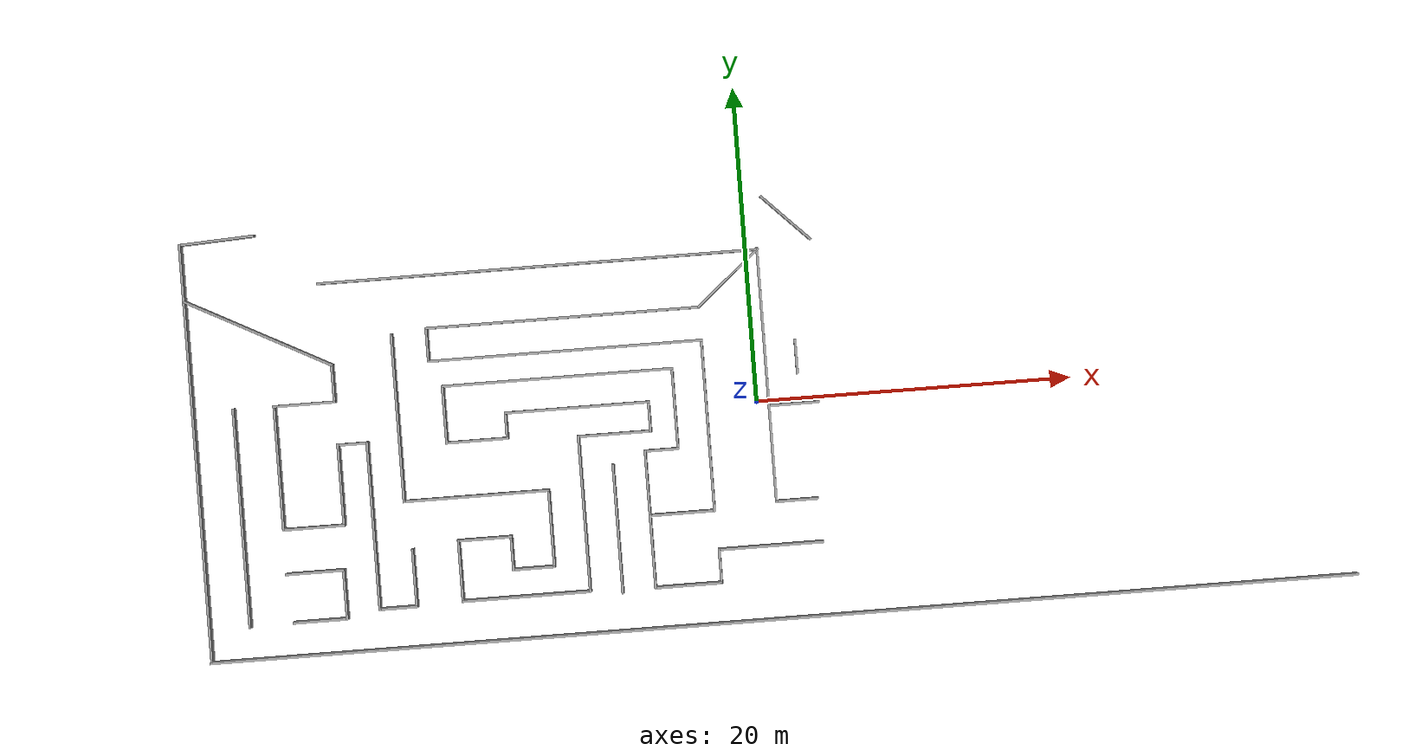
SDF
<sdf version="1.6">
 <model name="maze">
  <pose>0.673756 -0.372053 0 0 -0 0</pose>
  <link name="Wall_116">
   <collision name="Wall_116_Collision">
    <geometry><box><size>4.8415 0.15 2.5</size></box></geometry>
    <pose>0 0 1.25 0 -0 0</pose>
   </collision>
   <visual name="Wall_116_Visual">
    <pose>0 0 1.25 0 -0 0</pose>
    <geometry><box><size>4.8415 0.15 2.5</size></box></geometry>
    <material>
     <script><uri>file://media/materials/scripts/gazebo.material</uri><name>Gazebo/Grey</name></script>
     <ambient>1 1 1 1</ambient>
    </material>
   </visual>
   <pose>-34.0821 13.2535 0 0 -0 0.049384</pose>
  </link>
  <link name="Wall_12">
   <collision name="Wall_12_Collision">
    <geometry><box><size>28 0.15 2.5</size></box></geometry>
    <pose>0 0 1.25 0 -0 0</pose>
   </collision>
   <visual name="Wall_12_Visual">
    <pose>0 0 1.25 0 -0 0</pose>
    <geometry><box><size>28 0.15 2.5</size></box></geometry>
    <material>
     <script><uri>file://media/materials/scripts/gazebo.material</uri><name>Gazebo/Grey</name></script>
     <ambient>1 1 1 1</ambient>
    </material>
   </visual>
   <pose>-13.9482 10.0273 0 0 -0 0</pose>
  </link>
  <link name="Wall_128">
   <collision name="Wall_128_Collision">
    <geometry><box><size>2.25 0.15 2.5</size></box></geometry>
    <pose>0 0 1.25 0 -0 0</pose>
   </collision>
   <visual name="Wall_128_Visual">
    <pose>0 0 1.25 0 -0 0</pose>
    <geometry><box><size>2.25 0.15 2.5</size></box></geometry>
    <material>
     <script><uri>file://media/materials/scripts/gazebo.material</uri><name>Gazebo/Grey</name></script>
     <ambient>1 1 1 1</ambient>
    </material>
   </visual>
   <pose>2.03947 3.07382 0 0 0 -1.5708</pose>
  </link>
  <link name="Wall_13">
   <collision name="Wall_13_Collision">
    <geometry><box><size>5.35713 0.15 2.5</size></box></geometry>
    <pose>0 0 1.25 0 -0 0</pose>
   </collision>
   <visual name="Wall_13_Visual">
    <pose>0 0 1.25 0 -0 0</pose>
    <geometry><box><size>5.35713 0.15 2.5</size></box></geometry>
    <material>
     <script><uri>file://media/materials/scripts/gazebo.material</uri><name>Gazebo/Grey</name></script>
     <ambient>1 1 1 1</ambient>
    </material>
   </visual>
   <pose>-1.89938 8.3483 0 0 0 -2.44071</pose>
  </link>
  <link name="Wall_14">
   <collision name="Wall_14_Collision">
    <geometry><box><size>17.5 0.15 2.5</size></box></geometry>
    <pose>0 0 1.25 0 -0 0</pose>
   </collision>
   <visual name="Wall_14_Visual">
    <pose>0 0 1.25 0 -0 0</pose>
    <geometry><box><size>17.5 0.15 2.5</size></box></geometry>
    <material>
     <script><uri>file://media/materials/scripts/gazebo.material</uri><name>Gazebo/Grey</name></script>
     <ambient>1 1 1 1</ambient>
    </material>
   </visual>
   <pose>-12.5642 6.66928 0 0 -0 3.14159</pose>
  </link>
  <link name="Wall_146">
   <collision name="Wall_146_Collision">
    <geometry><box><size>4.75 0.15 2.5</size></box></geometry>
    <pose>0 0 1.25 0 -0 0</pose>
   </collision>
   <visual name="Wall_146_Visual">
    <pose>0 0 1.25 0 -0 0</pose>
    <geometry><box><size>4.75 0.15 2.5</size></box></geometry>
    <material>
     <script><uri>file://media/materials/scripts/gazebo.material</uri><name>Gazebo/Grey</name></script>
     <ambient>1 1 1 1</ambient>
    </material>
   </visual>
   <pose>-7.98922 -8.58072 0 0 0 -1.5708</pose>
  </link>
  <link name="Wall_147">
   <collision name="Wall_147_Collision">
    <geometry><box><size>2 0.15 2.5</size></box></geometry>
    <pose>0 0 1.25 0 -0 0</pose>
   </collision>
   <visual name="Wall_147_Visual">
    <pose>0 0 1.25 0 -0 0</pose>
    <geometry><box><size>2 0.15 2.5</size></box></geometry>
    <material>
     <script><uri>file://media/materials/scripts/gazebo.material</uri><name>Gazebo/Grey</name></script>
     <ambient>1 1 1 1</ambient>
    </material>
   </visual>
   <pose>-7.06422 -10.8807 0 0 -0 0</pose>
  </link>
  <link name="Wall_148">
   <collision name="Wall_148_Collision">
    <geometry><box><size>2.5 0.15 2.5</size></box></geometry>
    <pose>0 0 1.25 0 -0 0</pose>
   </collision>
   <visual name="Wall_148_Visual">
    <pose>0 0 1.25 0 -0 0</pose>
    <geometry><box><size>2.5 0.15 2.5</size></box></geometry>
    <material>
     <script><uri>file://media/materials/scripts/gazebo.material</uri><name>Gazebo/Grey</name></script>
     <ambient>1 1 1 1</ambient>
    </material>
   </visual>
   <pose>-4.96422 -10.8807 0 0 -0 0</pose>
  </link>
  <link name="Wall_149">
   <collision name="Wall_149_Collision">
    <geometry><box><size>2.25 0.15 2.5</size></box></geometry>
    <pose>0 0 1.25 0 -0 0</pose>
   </collision>
   <visual name="Wall_149_Visual">
    <pose>0 0 1.25 0 -0 0</pose>
    <geometry><box><size>2.25 0.15 2.5</size></box></geometry>
    <material>
     <script><uri>file://media/materials/scripts/gazebo.material</uri><name>Gazebo/Grey</name></script>
     <ambient>1 1 1 1</ambient>
    </material>
   </visual>
   <pose>-3.78922 -9.83072 0 0 -0 1.5708</pose>
  </link>
  <link name="Wall_15">
   <collision name="Wall_15_Collision">
    <geometry><box><size>2.25 0.15 2.5</size></box></geometry>
    <pose>0 0 1.25 0 -0 0</pose>
   </collision>
   <visual name="Wall_15_Visual">
    <pose>0 0 1.25 0 -0 0</pose>
    <geometry><box><size>2.25 0.15 2.5</size></box></geometry>
    <material>
     <script><uri>file://media/materials/scripts/gazebo.material</uri><name>Gazebo/Grey</name></script>
     <ambient>1 1 1 1</ambient>
    </material>
   </visual>
   <pose>-21.2392 5.61928 0 0 0 -1.5708</pose>
  </link>
  <link name="Wall_150">
   <collision name="Wall_150_Collision">
    <geometry><box><size>6.75 0.15 2.5</size></box></geometry>
    <pose>0 0 1.25 0 -0 0</pose>
   </collision>
   <visual name="Wall_150_Visual">
    <pose>0 0 1.25 0 -0 0</pose>
    <geometry><box><size>6.75 0.15 2.5</size></box></geometry>
    <material>
     <script><uri>file://media/materials/scripts/gazebo.material</uri><name>Gazebo/Grey</name></script>
     <ambient>1 1 1 1</ambient>
    </material>
   </visual>
   <pose>-0.489216 -8.78072 0 0 -0 0</pose>
  </link>
  <link name="Wall_153">
   <collision name="Wall_153_Collision">
    <geometry><box><size>8.25 0.15 2.5</size></box></geometry>
    <pose>0 0 1.25 0 -0 0</pose>
   </collision>
   <visual name="Wall_153_Visual">
    <pose>0 0 1.25 0 -0 0</pose>
    <geometry><box><size>8.25 0.15 2.5</size></box></geometry>
    <material>
     <script><uri>file://media/materials/scripts/gazebo.material</uri><name>Gazebo/Grey</name></script>
     <ambient>1 1 1 1</ambient>
    </material>
   </visual>
   <pose>-10.0893 -6.96963 0 0 0 -1.5708</pose>
  </link>
  <link name="Wall_156">
   <collision name="Wall_156_Collision">
    <geometry><box><size>10.75 0.15 2.5</size></box></geometry>
    <pose>0 0 1.25 0 -0 0</pose>
   </collision>
   <visual name="Wall_156_Visual">
    <pose>0 0 1.25 0 -0 0</pose>
    <geometry><box><size>10.75 0.15 2.5</size></box></geometry>
    <material>
     <script><uri>file://media/materials/scripts/gazebo.material</uri><name>Gazebo/Grey</name></script>
     <ambient>1 1 1 1</ambient>
    </material>
   </visual>
   <pose>-23.4764 1.11928 0 0 -0 1.5708</pose>
  </link>
  <link name="Wall_16">
   <collision name="Wall_16_Collision">
    <geometry><box><size>17.5 0.15 2.5</size></box></geometry>
    <pose>0 0 1.25 0 -0 0</pose>
   </collision>
   <visual name="Wall_16_Visual">
    <pose>0 0 1.25 0 -0 0</pose>
    <geometry><box><size>17.5 0.15 2.5</size></box></geometry>
    <material>
     <script><uri>file://media/materials/scripts/gazebo.material</uri><name>Gazebo/Grey</name></script>
     <ambient>1 1 1 1</ambient>
    </material>
   </visual>
   <pose>-12.5642 4.56928 0 0 -0 0</pose>
  </link>
  <link name="Wall_165">
   <collision name="Wall_165_Collision">
    <geometry><box><size>3.25 0.15 2.5</size></box></geometry>
    <pose>0 0 1.25 0 -0 0</pose>
   </collision>
   <visual name="Wall_165_Visual">
    <pose>0 0 1.25 0 -0 0</pose>
    <geometry><box><size>3.25 0.15 2.5</size></box></geometry>
    <material>
     <script><uri>file://media/materials/scripts/gazebo.material</uri><name>Gazebo/Grey</name></script>
     <ambient>1 1 1 1</ambient>
    </material>
   </visual>
   <pose>1.67671 0.087351 0 0 -0 0</pose>
  </link>
  <link name="Wall_17">
   <collision name="Wall_17_Collision">
    <geometry><box><size>11 0.15 2.5</size></box></geometry>
    <pose>0 0 1.25 0 -0 0</pose>
   </collision>
   <visual name="Wall_17_Visual">
    <pose>0 0 1.25 0 -0 0</pose>
    <geometry><box><size>11 0.15 2.5</size></box></geometry>
    <material>
     <script><uri>file://media/materials/scripts/gazebo.material</uri><name>Gazebo/Grey</name></script>
     <ambient>1 1 1 1</ambient>
    </material>
   </visual>
   <pose>-3.88922 -0.855718 0 0 0 -1.5708</pose>
  </link>
  <link name="Wall_18">
   <collision name="Wall_18_Collision">
    <geometry><box><size>4.25 0.15 2.5</size></box></geometry>
    <pose>0 0 1.25 0 -0 0</pose>
   </collision>
   <visual name="Wall_18_Visual">
    <pose>0 0 1.25 0 -0 0</pose>
    <geometry><box><size>4.25 0.15 2.5</size></box></geometry>
    <material>
     <script><uri>file://media/materials/scripts/gazebo.material</uri><name>Gazebo/Grey</name></script>
     <ambient>1 1 1 1</ambient>
    </material>
   </visual>
   <pose>-5.93922 -6.28072 0 0 -0 3.14159</pose>
  </link>
  <link name="Wall_19">
   <collision name="Wall_19_Collision">
    <geometry><box><size>4.25 0.15 2.5</size></box></geometry>
    <pose>0 0 1.25 0 -0 0</pose>
   </collision>
   <visual name="Wall_19_Visual">
    <pose>0 0 1.25 0 -0 0</pose>
    <geometry><box><size>4.25 0.15 2.5</size></box></geometry>
    <material>
     <script><uri>file://media/materials/scripts/gazebo.material</uri><name>Gazebo/Grey</name></script>
     <ambient>1 1 1 1</ambient>
    </material>
   </visual>
   <pose>-7.98922 -4.23072 0 0 -0 1.5708</pose>
  </link>
  <link name="Wall_195">
   <collision name="Wall_195_Collision">
    <geometry><box><size>4.25 0.15 2.5</size></box></geometry>
    <pose>0 0 1.25 0 -0 0</pose>
   </collision>
   <visual name="Wall_195_Visual">
    <pose>0 0 1.25 0 -0 0</pose>
    <geometry><box><size>4.25 0.15 2.5</size></box></geometry>
    <material>
     <script><uri>file://media/materials/scripts/gazebo.material</uri><name>Gazebo/Grey</name></script>
     <ambient>1 1 1 1</ambient>
    </material>
   </visual>
   <pose>2.05254 11.8855 0 0 -0 2.35619</pose>
  </link>
  <link name="Wall_20">
   <collision name="Wall_20_Collision">
    <geometry><box><size>2.25 0.15 2.5</size></box></geometry>
    <pose>0 0 1.25 0 -0 0</pose>
   </collision>
   <visual name="Wall_20_Visual">
    <pose>0 0 1.25 0 -0 0</pose>
    <geometry><box><size>2.25 0.15 2.5</size></box></geometry>
    <material>
     <script><uri>file://media/materials/scripts/gazebo.material</uri><name>Gazebo/Grey</name></script>
     <ambient>1 1 1 1</ambient>
    </material>
   </visual>
   <pose>-6.93922 -2.18072 0 0 -0 0</pose>
  </link>
  <link name="Wall_21">
   <collision name="Wall_21_Collision">
    <geometry><box><size>5.25 0.15 2.5</size></box></geometry>
    <pose>0 0 1.25 0 -0 0</pose>
   </collision>
   <visual name="Wall_21_Visual">
    <pose>0 0 1.25 0 -0 0</pose>
    <geometry><box><size>5.25 0.15 2.5</size></box></geometry>
    <material>
     <script><uri>file://media/materials/scripts/gazebo.material</uri><name>Gazebo/Grey</name></script>
     <ambient>1 1 1 1</ambient>
    </material>
   </visual>
   <pose>-5.88922 0.369282 0 0 -0 1.5708</pose>
  </link>
  <link name="Wall_22">
   <collision name="Wall_22_Collision">
    <geometry><box><size>14.75 0.15 2.5</size></box></geometry>
    <pose>0 0 1.25 0 -0 0</pose>
   </collision>
   <visual name="Wall_22_Visual">
    <pose>0 0 1.25 0 -0 0</pose>
    <geometry><box><size>14.75 0.15 2.5</size></box></geometry>
    <material>
     <script><uri>file://media/materials/scripts/gazebo.material</uri><name>Gazebo/Grey</name></script>
     <ambient>1 1 1 1</ambient>
    </material>
   </visual>
   <pose>-13.1892 2.91928 0 0 -0 3.14159</pose>
  </link>
  <link name="Wall_23">
   <collision name="Wall_23_Collision">
    <geometry><box><size>3.75 0.15 2.5</size></box></geometry>
    <pose>0 0 1.25 0 -0 0</pose>
   </collision>
   <visual name="Wall_23_Visual">
    <pose>0 0 1.25 0 -0 0</pose>
    <geometry><box><size>3.75 0.15 2.5</size></box></geometry>
    <material>
     <script><uri>file://media/materials/scripts/gazebo.material</uri><name>Gazebo/Grey</name></script>
     <ambient>1 1 1 1</ambient>
    </material>
   </visual>
   <pose>-20.4892 1.11928 0 0 0 -1.5708</pose>
  </link>
  <link name="Wall_24">
   <collision name="Wall_24_Collision">
    <geometry><box><size>4 0.15 2.5</size></box></geometry>
    <pose>0 0 1.25 0 -0 0</pose>
   </collision>
   <visual name="Wall_24_Visual">
    <pose>0 0 1.25 0 -0 0</pose>
    <geometry><box><size>4 0.15 2.5</size></box></geometry>
    <material>
     <script><uri>file://media/materials/scripts/gazebo.material</uri><name>Gazebo/Grey</name></script>
     <ambient>1 1 1 1</ambient>
    </material>
   </visual>
   <pose>-18.5642 -0.680718 0 0 -0 0</pose>
  </link>
  <link name="Wall_25">
   <collision name="Wall_25_Collision">
    <geometry><box><size>1.75 0.15 2.5</size></box></geometry>
    <pose>0 0 1.25 0 -0 0</pose>
   </collision>
   <visual name="Wall_25_Visual">
    <pose>0 0 1.25 0 -0 0</pose>
    <geometry><box><size>1.75 0.15 2.5</size></box></geometry>
    <material>
     <script><uri>file://media/materials/scripts/gazebo.material</uri><name>Gazebo/Grey</name></script>
     <ambient>1 1 1 1</ambient>
    </material>
   </visual>
   <pose>-16.6392 0.119282 0 0 -0 1.5708</pose>
  </link>
  <link name="Wall_26">
   <collision name="Wall_26_Collision">
    <geometry><box><size>9.25 0.15 2.5</size></box></geometry>
    <pose>0 0 1.25 0 -0 0</pose>
   </collision>
   <visual name="Wall_26_Visual">
    <pose>0 0 1.25 0 -0 0</pose>
    <geometry><box><size>9.25 0.15 2.5</size></box></geometry>
    <material>
     <script><uri>file://media/materials/scripts/gazebo.material</uri><name>Gazebo/Grey</name></script>
     <ambient>1 1 1 1</ambient>
    </material>
   </visual>
   <pose>-12.0892 0.919282 0 0 -0 0</pose>
  </link>
  <link name="Wall_27">
   <collision name="Wall_27_Collision">
    <geometry><box><size>2 0.15 2.5</size></box></geometry>
    <pose>0 0 1.25 0 -0 0</pose>
   </collision>
   <visual name="Wall_27_Visual">
    <pose>0 0 1.25 0 -0 0</pose>
    <geometry><box><size>2 0.15 2.5</size></box></geometry>
    <material>
     <script><uri>file://media/materials/scripts/gazebo.material</uri><name>Gazebo/Grey</name></script>
     <ambient>1 1 1 1</ambient>
    </material>
   </visual>
   <pose>-7.53922 -0.005718 0 0 0 -1.5708</pose>
  </link>
  <link name="Wall_28">
   <collision name="Wall_28_Collision">
    <geometry><box><size>4.75 0.15 2.5</size></box></geometry>
    <pose>0 0 1.25 0 -0 0</pose>
   </collision>
   <visual name="Wall_28_Visual">
    <pose>0 0 1.25 0 -0 0</pose>
    <geometry><box><size>4.75 0.15 2.5</size></box></geometry>
    <material>
     <script><uri>file://media/materials/scripts/gazebo.material</uri><name>Gazebo/Grey</name></script>
     <ambient>1 1 1 1</ambient>
    </material>
   </visual>
   <pose>-9.83922 -0.930718 0 0 -0 3.14159</pose>
  </link>
  <link name="Wall_29">
   <collision name="Wall_29_Collision">
    <geometry><box><size>10 0.15 2.5</size></box></geometry>
    <pose>0 0 1.25 0 -0 0</pose>
   </collision>
   <visual name="Wall_29_Visual">
    <pose>0 0 1.25 0 -0 0</pose>
    <geometry><box><size>10 0.15 2.5</size></box></geometry>
    <material>
     <script><uri>file://media/materials/scripts/gazebo.material</uri><name>Gazebo/Grey</name></script>
     <ambient>1 1 1 1</ambient>
    </material>
   </visual>
   <pose>-12.1392 -5.85572 0 0 0 -1.5708</pose>
  </link>
  <link name="Wall_30">
   <collision name="Wall_30_Collision">
    <geometry><box><size>8.25 0.15 2.5</size></box></geometry>
    <pose>0 0 1.25 0 -0 0</pose>
   </collision>
   <visual name="Wall_30_Visual">
    <pose>0 0 1.25 0 -0 0</pose>
    <geometry><box><size>8.25 0.15 2.5</size></box></geometry>
    <material>
     <script><uri>file://media/materials/scripts/gazebo.material</uri><name>Gazebo/Grey</name></script>
     <ambient>1 1 1 1</ambient>
    </material>
   </visual>
   <pose>-16.1892 -10.7807 0 0 -0 3.14159</pose>
  </link>
  <link name="Wall_31">
   <collision name="Wall_31_Collision">
    <geometry><box><size>4 0.15 2.5</size></box></geometry>
    <pose>0 0 1.25 0 -0 0</pose>
   </collision>
   <visual name="Wall_31_Visual">
    <pose>0 0 1.25 0 -0 0</pose>
    <geometry><box><size>4 0.15 2.5</size></box></geometry>
    <material>
     <script><uri>file://media/materials/scripts/gazebo.material</uri><name>Gazebo/Grey</name></script>
     <ambient>1 1 1 1</ambient>
    </material>
   </visual>
   <pose>-20.2392 -8.85572 0 0 -0 1.5708</pose>
  </link>
  <link name="Wall_32">
   <collision name="Wall_32_Collision">
    <geometry><box><size>3.5 0.15 2.5</size></box></geometry>
    <pose>0 0 1.25 0 -0 0</pose>
   </collision>
   <visual name="Wall_32_Visual">
    <pose>0 0 1.25 0 -0 0</pose>
    <geometry><box><size>3.5 0.15 2.5</size></box></geometry>
    <material>
     <script><uri>file://media/materials/scripts/gazebo.material</uri><name>Gazebo/Grey</name></script>
     <ambient>1 1 1 1</ambient>
    </material>
   </visual>
   <pose>-18.5642 -6.93072 0 0 -0 0</pose>
  </link>
  <link name="Wall_33">
   <collision name="Wall_33_Collision">
    <geometry><box><size>2.25 0.15 2.5</size></box></geometry>
    <pose>0 0 1.25 0 -0 0</pose>
   </collision>
   <visual name="Wall_33_Visual">
    <pose>0 0 1.25 0 -0 0</pose>
    <geometry><box><size>2.25 0.15 2.5</size></box></geometry>
    <material>
     <script><uri>file://media/materials/scripts/gazebo.material</uri><name>Gazebo/Grey</name></script>
     <ambient>1 1 1 1</ambient>
    </material>
   </visual>
   <pose>-16.8892 -7.98072 0 0 0 -1.5708</pose>
  </link>
  <link name="Wall_34">
   <collision name="Wall_34_Collision">
    <geometry><box><size>2.75 0.15 2.5</size></box></geometry>
    <pose>0 0 1.25 0 -0 0</pose>
   </collision>
   <visual name="Wall_34_Visual">
    <pose>0 0 1.25 0 -0 0</pose>
    <geometry><box><size>2.75 0.15 2.5</size></box></geometry>
    <material>
     <script><uri>file://media/materials/scripts/gazebo.material</uri><name>Gazebo/Grey</name></script>
     <ambient>1 1 1 1</ambient>
    </material>
   </visual>
   <pose>-15.5892 -9.03072 0 0 -0 0</pose>
  </link>
  <link name="Wall_35">
   <collision name="Wall_35_Collision">
    <geometry><box><size>5 0.15 2.5</size></box></geometry>
    <pose>0 0 1.25 0 -0 0</pose>
   </collision>
   <visual name="Wall_35_Visual">
    <pose>0 0 1.25 0 -0 0</pose>
    <geometry><box><size>5 0.15 2.5</size></box></geometry>
    <material>
     <script><uri>file://media/materials/scripts/gazebo.material</uri><name>Gazebo/Grey</name></script>
     <ambient>1 1 1 1</ambient>
    </material>
   </visual>
   <pose>-14.2892 -6.60572 0 0 -0 1.5708</pose>
  </link>
  <link name="Wall_36">
   <collision name="Wall_36_Collision">
    <geometry><box><size>9.33717 0.15 2.5</size></box></geometry>
    <pose>0 0 1.25 0 -0 0</pose>
   </collision>
   <visual name="Wall_36_Visual">
    <pose>0 0 1.25 0 -0 0</pose>
    <geometry><box><size>9.33717 0.15 2.5</size></box></geometry>
    <material>
     <script><uri>file://media/materials/scripts/gazebo.material</uri><name>Gazebo/Grey</name></script>
     <ambient>1 1 1 1</ambient>
    </material>
   </visual>
   <pose>-18.8828 -4.18072 0 0 -0 3.14159</pose>
  </link>
  <link name="Wall_40">
   <collision name="Wall_40_Collision">
    <geometry><box><size>10.2783 0.15 2.5</size></box></geometry>
    <pose>0 0 1.25 0 -0 0</pose>
   </collision>
   <visual name="Wall_40_Visual">
    <pose>0 0 1.25 0 -0 0</pose>
    <geometry><box><size>10.2783 0.15 2.5</size></box></geometry>
    <material>
     <script><uri>file://media/materials/scripts/gazebo.material</uri><name>Gazebo/Grey</name></script>
     <ambient>1 1 1 1</ambient>
    </material>
   </visual>
   <pose>-31.8772 7.16528 0 0 0 -0.481664</pose>
  </link>
  <link name="Wall_41">
   <collision name="Wall_41_Collision">
    <geometry><box><size>2.5 0.15 2.5</size></box></geometry>
    <pose>0 0 1.25 0 -0 0</pose>
   </collision>
   <visual name="Wall_41_Visual">
    <pose>0 0 1.25 0 -0 0</pose>
    <geometry><box><size>2.5 0.15 2.5</size></box></geometry>
    <material>
     <script><uri>file://media/materials/scripts/gazebo.material</uri><name>Gazebo/Grey</name></script>
     <ambient>1 1 1 1</ambient>
    </material>
   </visual>
   <pose>-27.3892 3.64428 0 0 0 -1.5708</pose>
  </link>
  <link name="Wall_42">
   <collision name="Wall_42_Collision">
    <geometry><box><size>4 0.15 2.5</size></box></geometry>
    <pose>0 0 1.25 0 -0 0</pose>
   </collision>
   <visual name="Wall_42_Visual">
    <pose>0 0 1.25 0 -0 0</pose>
    <geometry><box><size>4 0.15 2.5</size></box></geometry>
    <material>
     <script><uri>file://media/materials/scripts/gazebo.material</uri><name>Gazebo/Grey</name></script>
     <ambient>1 1 1 1</ambient>
    </material>
   </visual>
   <pose>-29.3142 2.46928 0 0 -0 3.14159</pose>
  </link>
  <link name="Wall_43">
   <collision name="Wall_43_Collision">
    <geometry><box><size>8 0.15 2.5</size></box></geometry>
    <pose>0 0 1.25 0 -0 0</pose>
   </collision>
   <visual name="Wall_43_Visual">
    <pose>0 0 1.25 0 -0 0</pose>
    <geometry><box><size>8 0.15 2.5</size></box></geometry>
    <material>
     <script><uri>file://media/materials/scripts/gazebo.material</uri><name>Gazebo/Grey</name></script>
     <ambient>1 1 1 1</ambient>
    </material>
   </visual>
   <pose>-31.2392 -1.45572 0 0 0 -1.5708</pose>
  </link>
  <link name="Wall_44">
   <collision name="Wall_44_Collision">
    <geometry><box><size>4 0.15 2.5</size></box></geometry>
    <pose>0 0 1.25 0 -0 0</pose>
   </collision>
   <visual name="Wall_44_Visual">
    <pose>0 0 1.25 0 -0 0</pose>
    <geometry><box><size>4 0.15 2.5</size></box></geometry>
    <material>
     <script><uri>file://media/materials/scripts/gazebo.material</uri><name>Gazebo/Grey</name></script>
     <ambient>1 1 1 1</ambient>
    </material>
   </visual>
   <pose>-29.3142 -5.38072 0 0 -0 0</pose>
  </link>
  <link name="Wall_45">
   <collision name="Wall_45_Collision">
    <geometry><box><size>5.25 0.15 2.5</size></box></geometry>
    <pose>0 0 1.25 0 -0 0</pose>
   </collision>
   <visual name="Wall_45_Visual">
    <pose>0 0 1.25 0 -0 0</pose>
    <geometry><box><size>5.25 0.15 2.5</size></box></geometry>
    <material>
     <script><uri>file://media/materials/scripts/gazebo.material</uri><name>Gazebo/Grey</name></script>
     <ambient>1 1 1 1</ambient>
    </material>
   </visual>
   <pose>-27.3892 -2.83072 0 0 -0 1.5708</pose>
  </link>
  <link name="Wall_46">
   <collision name="Wall_46_Collision">
    <geometry><box><size>2 0.15 2.5</size></box></geometry>
    <pose>0 0 1.25 0 -0 0</pose>
   </collision>
   <visual name="Wall_46_Visual">
    <pose>0 0 1.25 0 -0 0</pose>
    <geometry><box><size>2 0.15 2.5</size></box></geometry>
    <material>
     <script><uri>file://media/materials/scripts/gazebo.material</uri><name>Gazebo/Grey</name></script>
     <ambient>1 1 1 1</ambient>
    </material>
   </visual>
   <pose>-26.4642 -0.280718 0 0 -0 0</pose>
  </link>
  <link name="Wall_47">
   <collision name="Wall_47_Collision">
    <geometry><box><size>10.75 0.15 2.5</size></box></geometry>
    <pose>0 0 1.25 0 -0 0</pose>
   </collision>
   <visual name="Wall_47_Visual">
    <pose>0 0 1.25 0 -0 0</pose>
    <geometry><box><size>10.75 0.15 2.5</size></box></geometry>
    <material>
     <script><uri>file://media/materials/scripts/gazebo.material</uri><name>Gazebo/Grey</name></script>
     <ambient>1 1 1 1</ambient>
    </material>
   </visual>
   <pose>-25.5392 -5.58072 0 0 0 -1.5708</pose>
  </link>
  <link name="Wall_48">
   <collision name="Wall_48_Collision">
    <geometry><box><size>2.5 0.15 2.5</size></box></geometry>
    <pose>0 0 1.25 0 -0 0</pose>
   </collision>
   <visual name="Wall_48_Visual">
    <pose>0 0 1.25 0 -0 0</pose>
    <geometry><box><size>2.5 0.15 2.5</size></box></geometry>
    <material>
     <script><uri>file://media/materials/scripts/gazebo.material</uri><name>Gazebo/Grey</name></script>
     <ambient>1 1 1 1</ambient>
    </material>
   </visual>
   <pose>-24.3642 -10.8807 0 0 -0 0</pose>
  </link>
  <link name="Wall_49">
   <collision name="Wall_49_Collision">
    <geometry><box><size>3.75 0.15 2.5</size></box></geometry>
    <pose>0 0 1.25 0 -0 0</pose>
   </collision>
   <visual name="Wall_49_Visual">
    <pose>0 0 1.25 0 -0 0</pose>
    <geometry><box><size>3.75 0.15 2.5</size></box></geometry>
    <material>
     <script><uri>file://media/materials/scripts/gazebo.material</uri><name>Gazebo/Grey</name></script>
     <ambient>1 1 1 1</ambient>
    </material>
   </visual>
   <pose>-23.1892 -9.08072 0 0 -0 1.5708</pose>
  </link>
  <link name="Wall_51">
   <collision name="Wall_51_Collision">
    <geometry><box><size>3.75 0.15 2.5</size></box></geometry>
    <pose>0 0 1.25 0 -0 0</pose>
   </collision>
   <visual name="Wall_51_Visual">
    <pose>0 0 1.25 0 -0 0</pose>
    <geometry><box><size>3.75 0.15 2.5</size></box></geometry>
    <material>
     <script><uri>file://media/materials/scripts/gazebo.material</uri><name>Gazebo/Grey</name></script>
     <ambient>1 1 1 1</ambient>
    </material>
   </visual>
   <pose>-29.4495 -8.21345 0 0 -0 0</pose>
  </link>
  <link name="Wall_52">
   <collision name="Wall_52_Collision">
    <geometry><box><size>3.25 0.15 2.5</size></box></geometry>
    <pose>0 0 1.25 0 -0 0</pose>
   </collision>
   <visual name="Wall_52_Visual">
    <pose>0 0 1.25 0 -0 0</pose>
    <geometry><box><size>3.25 0.15 2.5</size></box></geometry>
    <material>
     <script><uri>file://media/materials/scripts/gazebo.material</uri><name>Gazebo/Grey</name></script>
     <ambient>1 1 1 1</ambient>
    </material>
   </visual>
   <pose>-27.6495 -9.76346 0 0 0 -1.5708</pose>
  </link>
  <link name="Wall_53">
   <collision name="Wall_53_Collision">
    <geometry><box><size>3.5 0.15 2.5</size></box></geometry>
    <pose>0 0 1.25 0 -0 0</pose>
   </collision>
   <visual name="Wall_53_Visual">
    <pose>0 0 1.25 0 -0 0</pose>
    <geometry><box><size>3.5 0.15 2.5</size></box></geometry>
    <material>
     <script><uri>file://media/materials/scripts/gazebo.material</uri><name>Gazebo/Grey</name></script>
     <ambient>1 1 1 1</ambient>
    </material>
   </visual>
   <pose>-29.3245 -11.3135 0 0 -0 3.14159</pose>
  </link>
  <link name="Wall_57">
   <collision name="Wall_57_Collision">
    <geometry><box><size>16.25 0.15 2.5</size></box></geometry>
    <pose>0 0 1.25 0 -0 0</pose>
   </collision>
   <visual name="Wall_57_Visual">
    <pose>0 0 1.25 0 -0 0</pose>
    <geometry><box><size>16.25 0.15 2.5</size></box></geometry>
    <material>
     <script><uri>file://media/materials/scripts/gazebo.material</uri><name>Gazebo/Grey</name></script>
     <ambient>1 1 1 1</ambient>
    </material>
   </visual>
   <pose>0.074144 2.03563 0 0 0 -1.5708</pose>
  </link>
  <link name="Wall_58">
   <collision name="Wall_58_Collision">
    <geometry><box><size>2.75 0.15 2.5</size></box></geometry>
    <pose>0 0 1.25 0 -0 0</pose>
   </collision>
   <visual name="Wall_58_Visual">
    <pose>0 0 1.25 0 -0 0</pose>
    <geometry><box><size>2.75 0.15 2.5</size></box></geometry>
    <material>
     <script><uri>file://media/materials/scripts/gazebo.material</uri><name>Gazebo/Grey</name></script>
     <ambient>1 1 1 1</ambient>
    </material>
   </visual>
   <pose>1.37414 -6.01437 0 0 -0 0</pose>
  </link>
  <link name="Wall_74">
   <collision name="Wall_74_Collision">
    <geometry><box><size>14 0.15 2.5</size></box></geometry>
    <pose>0 0 1.25 0 -0 0</pose>
   </collision>
   <visual name="Wall_74_Visual">
    <pose>0 0 1.25 0 -0 0</pose>
    <geometry><box><size>14 0.15 2.5</size></box></geometry>
    <material>
     <script><uri>file://media/materials/scripts/gazebo.material</uri><name>Gazebo/Grey</name></script>
     <ambient>1 1 1 1</ambient>
    </material>
   </visual>
   <pose>-33.8462 -4.4536 0 0 0 -1.5708</pose>
  </link>
  <link name="Wall_8">
   <collision name="Wall_8_Collision">
    <geometry><box><size>73.077 0.15 2.5</size></box></geometry>
    <pose>0 0 1.25 0 -0 0</pose>
   </collision>
   <visual name="Wall_8_Visual">
    <pose>0 0 1.25 0 -0 0</pose>
    <geometry><box><size>73.077 0.15 2.5</size></box></geometry>
    <material>
     <script><uri>file://media/materials/scripts/gazebo.material</uri><name>Gazebo/Grey</name></script>
     <ambient>1 1 1 1</ambient>
    </material>
   </visual>
   <pose>-1e-06 -13.4748 0 0 -0 3.14125</pose>
  </link>
  <link name="Wall_9">
   <collision name="Wall_9_Collision">
    <geometry><box><size>26.75 0.15 2.5</size></box></geometry>
    <pose>0 0 1.25 0 -0 0</pose>
   </collision>
   <visual name="Wall_9_Visual">
    <pose>0 0 1.25 0 -0 0</pose>
    <geometry><box><size>26.75 0.15 2.5</size></box></geometry>
    <material>
     <script><uri>file://media/materials/scripts/gazebo.material</uri><name>Gazebo/Grey</name></script>
     <ambient>1 1 1 1</ambient>
    </material>
   </visual>
   <pose>-36.425 -0.162311 0 0 -0 1.5708</pose>
  </link>
  <static>1</static>
 </model>
</sdf>
